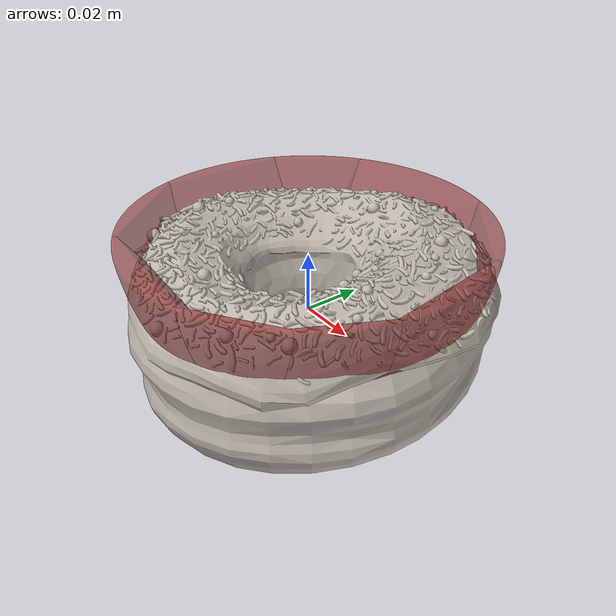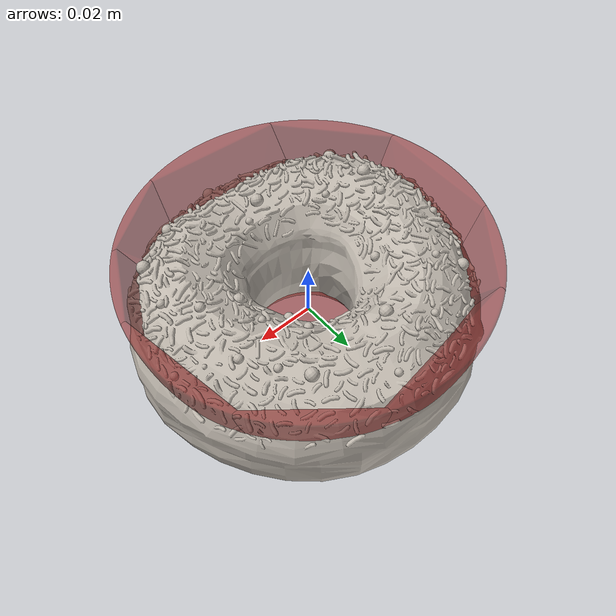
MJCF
<mujoco model="bowl_35">
  <asset>
    <mesh file="visual/model_normalized_0.obj" name="model_normalized_0_vis" scale="0.11999999999999994 0.11999999999999994 0.11999999999999994" refquat="1.0 0.0 0.0 0.0"/>
    <texture type="2d" name="image0" file="visual/image0.png"/>
    <material name="default.002" texture="image0" specular="0.5" shininess="0.07071068"/>
    <mesh file="collision/collision_mesh_collision_0.obj" name="bowl_collision_mesh_0" scale="0.11999999999999994 0.11999999999999994 0.11999999999999994" refquat="1.0 0.0 0.0 0.0"/>
    <mesh file="collision/collision_mesh_collision_1.obj" name="bowl_collision_mesh_1" scale="0.11999999999999994 0.11999999999999994 0.11999999999999994" refquat="1.0 0.0 0.0 0.0"/>
    <mesh file="collision/collision_mesh_collision_2.obj" name="bowl_collision_mesh_2" scale="0.11999999999999994 0.11999999999999994 0.11999999999999994" refquat="1.0 0.0 0.0 0.0"/>
    <mesh file="collision/collision_mesh_collision_3.obj" name="bowl_collision_mesh_3" scale="0.11999999999999994 0.11999999999999994 0.11999999999999994" refquat="1.0 0.0 0.0 0.0"/>
    <mesh file="collision/collision_mesh_collision_4.obj" name="bowl_collision_mesh_4" scale="0.11999999999999994 0.11999999999999994 0.11999999999999994" refquat="1.0 0.0 0.0 0.0"/>
    <mesh file="collision/collision_mesh_collision_5.obj" name="bowl_collision_mesh_5" scale="0.11999999999999994 0.11999999999999994 0.11999999999999994" refquat="1.0 0.0 0.0 0.0"/>
    <mesh file="collision/collision_mesh_collision_6.obj" name="bowl_collision_mesh_6" scale="0.11999999999999994 0.11999999999999994 0.11999999999999994" refquat="1.0 0.0 0.0 0.0"/>
    <mesh file="collision/collision_mesh_collision_7.obj" name="bowl_collision_mesh_7" scale="0.11999999999999994 0.11999999999999994 0.11999999999999994" refquat="1.0 0.0 0.0 0.0"/>
    <mesh file="collision/collision_mesh_collision_8.obj" name="bowl_collision_mesh_8" scale="0.11999999999999994 0.11999999999999994 0.11999999999999994" refquat="1.0 0.0 0.0 0.0"/>
    <mesh file="collision/collision_mesh_collision_9.obj" name="bowl_collision_mesh_9" scale="0.11999999999999994 0.11999999999999994 0.11999999999999994" refquat="1.0 0.0 0.0 0.0"/>
    <mesh file="collision/collision_mesh_collision_10.obj" name="bowl_collision_mesh_10" scale="0.11999999999999994 0.11999999999999994 0.11999999999999994" refquat="1.0 0.0 0.0 0.0"/>
    <mesh file="collision/collision_mesh_collision_11.obj" name="bowl_collision_mesh_11" scale="0.11999999999999994 0.11999999999999994 0.11999999999999994" refquat="1.0 0.0 0.0 0.0"/>
    <mesh file="collision/collision_mesh_collision_12.obj" name="bowl_collision_mesh_12" scale="0.11999999999999994 0.11999999999999994 0.11999999999999994" refquat="1.0 0.0 0.0 0.0"/>
    <mesh file="collision/collision_mesh_collision_13.obj" name="bowl_collision_mesh_13" scale="0.11999999999999994 0.11999999999999994 0.11999999999999994" refquat="1.0 0.0 0.0 0.0"/>
    <mesh file="collision/collision_mesh_collision_14.obj" name="bowl_collision_mesh_14" scale="0.11999999999999994 0.11999999999999994 0.11999999999999994" refquat="1.0 0.0 0.0 0.0"/>
    <mesh file="collision/collision_mesh_collision_15.obj" name="bowl_collision_mesh_15" scale="0.11999999999999994 0.11999999999999994 0.11999999999999994" refquat="1.0 0.0 0.0 0.0"/>
  </asset>
  <default>
    <default class="region">
      <geom group="1" conaffinity="0" contype="0" rgba="0 1 0 0"/>
    </default>
    <default class="collision">
      <geom group="0" rgba="0.5 0 0 0.5" density="1000.0"/>
    </default>
  </default>
  <worldbody>
    <body>
      <body name="object">
        <geom solimp="0.998 0.998 0.001" solref="0.001 1" density="100" friction="3.95 0.3 0.1" type="mesh" mesh="model_normalized_0_vis" conaffinity="0" contype="0" group="1" material="default.002"/>
        <geom class="region" name="reg_bbox" type="box" pos="2.3040000000196226e-07 -6.401999999994243e-07 0.0" size="0.05999877839999997 0.05999935979999997 0.03087954239999998"/>
        <geom mesh="bowl_collision_mesh_0" type="mesh" class="collision"/>
        <geom mesh="bowl_collision_mesh_1" type="mesh" class="collision"/>
        <geom mesh="bowl_collision_mesh_2" type="mesh" class="collision"/>
        <geom mesh="bowl_collision_mesh_3" type="mesh" class="collision"/>
        <geom mesh="bowl_collision_mesh_4" type="mesh" class="collision"/>
        <geom mesh="bowl_collision_mesh_5" type="mesh" class="collision"/>
        <geom mesh="bowl_collision_mesh_6" type="mesh" class="collision"/>
        <geom mesh="bowl_collision_mesh_7" type="mesh" class="collision"/>
        <geom mesh="bowl_collision_mesh_8" type="mesh" class="collision"/>
        <geom mesh="bowl_collision_mesh_9" type="mesh" class="collision"/>
        <geom mesh="bowl_collision_mesh_10" type="mesh" class="collision"/>
        <geom mesh="bowl_collision_mesh_11" type="mesh" class="collision"/>
        <geom mesh="bowl_collision_mesh_12" type="mesh" class="collision"/>
        <geom mesh="bowl_collision_mesh_13" type="mesh" class="collision"/>
        <geom mesh="bowl_collision_mesh_14" type="mesh" class="collision"/>
        <geom mesh="bowl_collision_mesh_15" type="mesh" class="collision"/>
        <geom rgba="0 0 0 0 " size="0.057 0.057 0.05" pos="0 0 0.03" type="ellipsoid" name="reg_int" class="region"/>
      </body>
    </body>
  </worldbody>
</mujoco>
